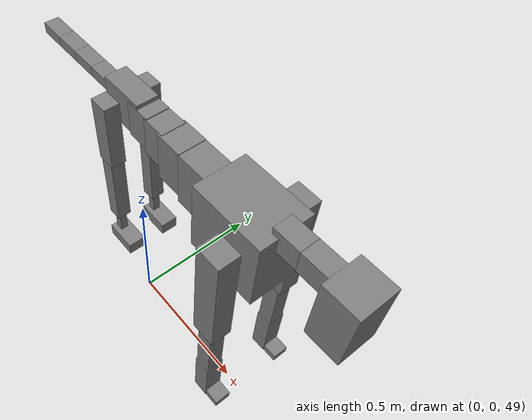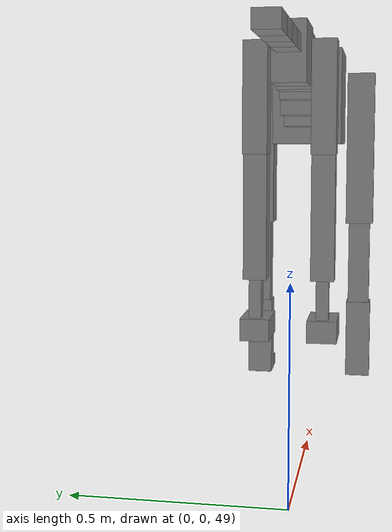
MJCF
<mujoco model="dog">

    <default>
        <joint armature="0.02" stiffness="1" damping="0.2" limited="true"/>
        <geom condim="3" friction="1 0.05 0.05" margin="0.01"/>
        <motor ctrllimited="true" ctrlrange="-1.0 1.0" forcelimited="true" gear="50"/>
    </default>

    <compiler inertiafromgeom="true" angle="radian"/>

    <option timestep="0.016" iterations="50" tolerance="1e-10" solver="Newton" jacobian="dense" cone="pyramidal"/>

    <size nconmax="20000" njmax="60000" nstack="5000000"/>
    <visual>
        <map force="0.1" zfar="30"/>
        <rgba haze="0.15 0.25 0.35 1"/>
        <quality shadowsize="2048"/>
        <global offwidth="800" offheight="800"/>
    </visual>

    <asset>
        <texture type="skybox" builtin="gradient" rgb1="0.3 0.5 0.7" rgb2="0 0 0" width="512" height="512"/>
        <texture name="texplane" type="2d" builtin="checker" rgb1=".2 .3 .4" rgb2=".1 0.15 0.2" width="512" height="512"
                 mark="cross" markrgb=".8 .8 .8"/>
        <texture name="texgeom" type="cube" builtin="flat" mark="cross" width="127" height="1278" rgb1="0.8 0.6 0.4"
                 rgb2="0.8 0.6 0.4" markrgb="1 1 1" random="0.01"/>

        <material name="matplane" reflectance="0.3" texture="texplane" texrepeat="1 1" texuniform="true"/>
        <material name="matgeom" texture="texgeom" texuniform="true" rgba="0.8 0.6 .4 1"/>
    </asset>

    <worldbody>
        <geom name="floor" pos="0 0 0" size="0 0 .25" type="plane" material="matplane" condim="3"/>

        <light directional="false" diffuse=".2 .2 .2" specular="0 0 0" pos="0 0 5" dir="0 0 -1" castshadow="false"/>
        <light mode="targetbodycom" target="torso" directional="false" diffuse=".8 .8 .8" specular="0.3 0.3 0.3"
               pos="0 0 4.0" dir="0 0 -1"/>

        <body name="root" pos="0 0 50">
            <freejoint name="root_1"/>
            <geom type="box" pos="0 0 -0.02" size="0.0774  0.0358  0.063" density="2030"/>

            <body name="spine1" pos="0.054 0 0">
                <joint name="spine1_y" axis="0 1 0" range="0 0.7" limited="true"/>
                <geom type="box" pos="0.02375 0 -0.03" size="0.04375  0.0375  0.05985" density="2030"/>

                <body name="spine2" pos="0.0612 0 0">
                    <joint name="spine2_y" axis="0 1 0" range="-0.15 0.15" limited="true"/>
                    <geom type="box" pos="0.03555  0  -0.04" size="0.04055  0.039  0.06615" density="2030"/>

                    <body name="spine3" pos="0.0730 0 0">
                        <joint name="spine3_y" axis="0 1 0" range="-0.15 0.15" limited="true"/>
                        <geom type="box" pos="0.03555  0  -0.057" size="0.04555  0.0445  0.081" density="2030"/>

                        <body name="spine4" pos="0.0780 0 0">
                            <joint name="spine4_y" axis="0 1 0" range="-0.15 0.15" limited="true"/>
                            <geom type="box" pos="0.05265  0  -0.07" size="0.05265  0.045  0.09135" density="2030"/>

                            <body name="torso" pos="0.1082 0 0">
                                <joint name="torso_y" axis="0 1 0" range="-0.15 0.15" limited="true"/>
                                <geom type="box" pos="0.11925  0  -0.085" size="0.11925  0.085  0.11745"
                                      density="2030"/>

                                <body name="neck1" pos="0.2160  0   0.0180">
                                    <joint name="neck1_y" axis="0 1 0" range="-1.2  -1" limited="true"/>
                                    <geom type="box" pos="0.0423  0  0" size="0.0423  0.03  0.036" density="2325"/>

                                    <body name="neck2" pos="0.0853  0  0">
                                        <joint name="neck2_y" axis="0 1 0" range="0.1  0" limited="true"/>
                                        <geom type="box" pos="0.0423  0  0" size="0.0423  0.03  0.036" density="2325"/>

                                        <body name="head" pos="0.0853  0  0">
                                            <joint name="head_y" axis="0 1 0" range="-0.3  -0.2" limited="true"/>
                                            <geom type="box" pos="0.0531  0  -0.055" size="0.0531  0.06  0.1044"
                                                  density="4030"/>

                                        </body>
                                    </body>
                                </body>

                                <body name="front_shoulder" pos="0.156  0   -0.0480">
                                    <joint name="front_shoulder_y" axis="0 1 0" range="-1 1.5" limited="true"/>
                                    <geom type="box" pos="0 0.13 -0.1670" size="0.0404  0.0345  0.1937" density="1158"/>
                                    <geom type="box" pos="0 -0.13 -0.1670" size="0.0404  0.0345  0.1937"
                                          density="1158"/>

                                    <body name="front_elbow" pos="0  0  -0.3340">
                                        <joint name="front_elbow_y" axis="0 1 0" range="-2 0" limited="true"/>
                                        <geom type="box" pos="0 0.13 -0.1246" size="0.0263  0.0269  0.1246"
                                              density="1081"/>
                                        <geom type="box" pos="0 -0.13 -0.1246" size="0.0263  0.0269  0.1246"
                                              density="1081"/>

                                        <body name="front_wrist" pos="0  0  -0.2492">
                                            <joint name="front_wrist_y" axis="0 1 0" range="-0.2 0" limited="true"/>
                                            <geom type="box" pos="0 0.13 -0.0849" size="0.0277  0.0308  0.0980"
                                                  density="1664"/>
                                            <geom type="box" pos="0 -0.13 -0.0849" size="0.0277  0.0308  0.0980"
                                                  density="1664"/>

                                            <body name="front_finger_end" pos="0  0  -0.1698">
                                                <joint name="front_finger_y" axis="0 1 0" range="-0.4 1"
                                                       limited="true"/>
                                                <geom type="box" pos="0.0283  0.13  0.0001"
                                                      size="0.0518  0.0283  0.0149" density="1515"/>
                                                <geom type="box" pos="0.0283  -0.13  0.0001"
                                                      size="0.0518  0.0283  0.0149" density="1515"/>

                                            </body>

                                        </body>
                                    </body>
                                </body>

                            </body>
                        </body>
                    </body>
                </body>
            </body>

            <body name="back_hip" pos="-0.03 0 -0.018">
                <joint name="back_hip_y" axis="0 1 0" range="-1.5 0.3" limited="true"/>
                <geom type="box" pos="0 0.07 -0.0927" size="0.0324  0.0254  0.1155" density="1154"/>
                <geom type="box" pos="0 -0.07 -0.0927" size="0.0324  0.0254  0.1155" density="1154"/>

                <body name="back_knee" pos="0  0  -0.1854">
                    <joint name="back_knee_y" axis="0 1 0" range="0 2.8" limited="true"/>
                    <geom type="box" pos="0 0.07 -0.1338" size="0.0247  0.0243  0.1494" density="1227"/>
                    <geom type="box" pos="0 -0.07 -0.1338" size="0.0247  0.0243  0.1494" density="1227"/>

                    <body name="back_ankle" pos="0  0  -0.2676">
                        <joint name="back_ankle_y" axis="0 1 0" range="-2.2 0" limited="true"/>
                        <geom type="box" pos="0 0.07 -0.0568" size="0.0132  0.0132  0.0680" density="1284"/>
                        <geom type="box" pos="0 -0.07 -0.0568" size="0.0132  0.0132  0.0680" density="1284"/>

                        <body name="back_toe_end" pos="0  0  -0.1136">
                            <joint name="back_toe_y" axis="0 1 0" range="-0.4 1" limited="true"/>
                            <geom type="box" pos="0.0310  0.07  -0.0083" size="0.0569  0.0310  0.0233" density="1515"/>
                            <geom type="box" pos="0.0310  -0.07  -0.0083" size="0.0569  0.0310  0.0233" density="1515"/>

                        </body>
                    </body>
                </body>
            </body>

            <body name="tail1" pos="-0.074 0 -0.006">
                <joint name="tail1_y" axis="0 1 0" range="-0.2 0.2" limited="true"/>
                <geom type="box" pos="-0.0536  0  0" size="0.045  0.025  0.0175" density="1587"/>

                <body name="tail2" pos="-0.09 0 0">
                    <joint name="tail2_y" axis="0 1 0" range="-0.2 0.2" limited="true"/>
                    <geom type="box" pos="-0.0536  0  0" size="0.045  0.025  0.0175" density="1587"/>

                    <body name="tail3" pos="-0.09 0 0">
                        <joint name="tail3_y" axis="0 1 0" range="-0.2 0.2" limited="true"/>
                        <geom type="box" pos="-0.0536  0  0" size="0.045  0.025  0.0175" density="1587"/>

                        <body name="tail4" pos="-0.09 0 0">
                            <joint name="tail4_y" axis="0 1 0" range="-0.2 0.2" limited="true"/>
                            <geom type="box" pos="-0.0536  0  0" size="0.045  0.025  0.0175" density="1587"/>

                        </body>
                    </body>
                </body>
            </body>
        </body>
    </worldbody>

    <actuator>
        <motor joint="spine1_y" forcerange="-150 150     "/>
        <motor joint="spine2_y" forcerange="-150 150     "/>
        <motor joint="spine3_y" forcerange="-150 150     "/>
        <motor joint="spine4_y" forcerange="-150 150     "/>
        <motor joint="torso_y" forcerange="-150 150     "/>
        <motor joint="neck1_y" forcerange="-100 100       "/>
        <motor joint="neck2_y" forcerange="-100 100       "/>
        <motor joint="head_y" forcerange="-150 150       "/>
        <motor joint="front_shoulder_y" forcerange="-150.64 179.48"/>
        <motor joint="front_elbow_y" forcerange="-107.78 187.68"/>
        <motor joint="front_wrist_y" forcerange="-124.46 122.19"/>
        <motor joint="front_finger_y" forcerange="-68.66 42.16"/>
        <motor joint="back_hip_y" forcerange="-288.57 250.74"/>
        <motor joint="back_knee_y" forcerange="-233.41 320.12"/>
        <motor joint="back_angle_y" forcerange="-59.87 51.21"/>
        <motor joint="back_toe_y" forcerange="-52.59 115.63"/>
        <motor joint="tail1_y" forcerange="-50 50     "/>
        <motor joint="tail2_y" forcerange="-50 50     "/>
        <motor joint="tail3_y" forcerange="-50 50     "/>
        <motor joint="tail4_y" forcerange="-50 50     "/>
    </actuator>
</mujoco>
